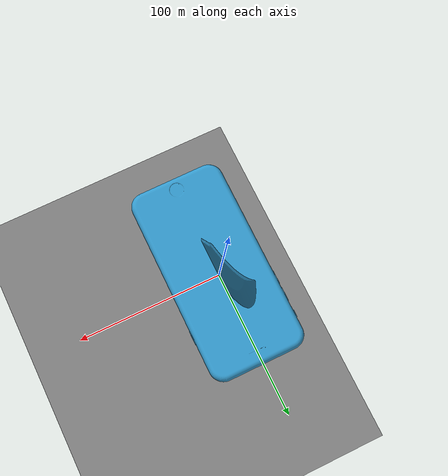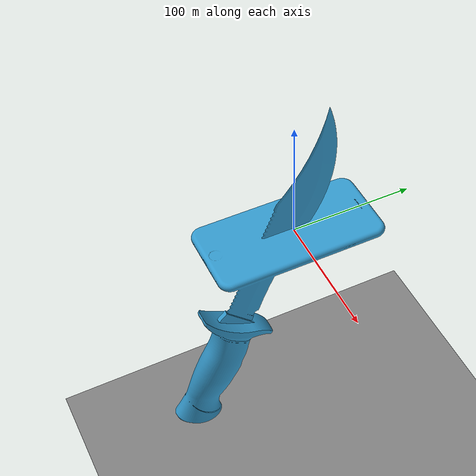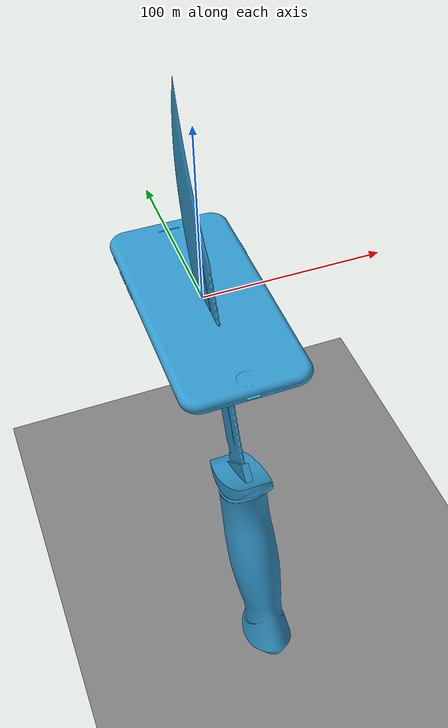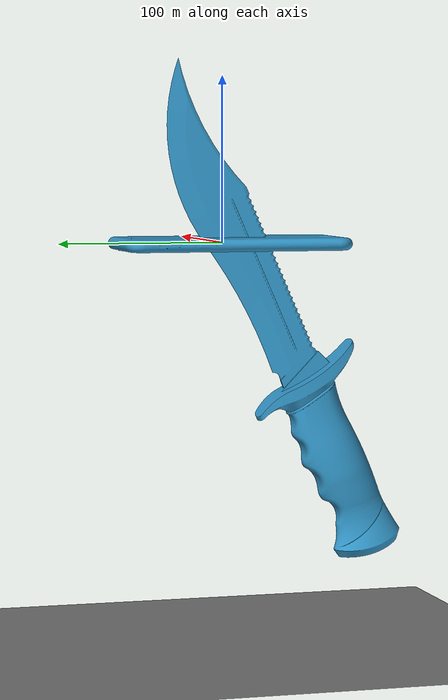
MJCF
<mujoco model="phone_model">
    <compiler angle="radian" coordinate="local" />

    <option gravity="0 0 0" />

    <asset>
        <!-- Load the STL mesh -->
        <mesh name="phone_mesh" file="stabbedPhone.stl" />
    </asset>

    <worldbody>
        <geom name="ground" type="plane" size="500 500 0.1" pos="0 0 -250" rgba="0.5 0.5 0.5 1" contype="0" conaffinity="0" />

        <body name="phone" pos="0 0 0">
            <joint name="free_joint" type="free"/>
            <!-- Attach the mesh as a visual and collision object -->
            <geom type="mesh" mesh="phone_mesh" rgba="0.2 0.6 0.8 1" pos="-35 -135 -208" />
        </body>
    </worldbody>
</mujoco>
